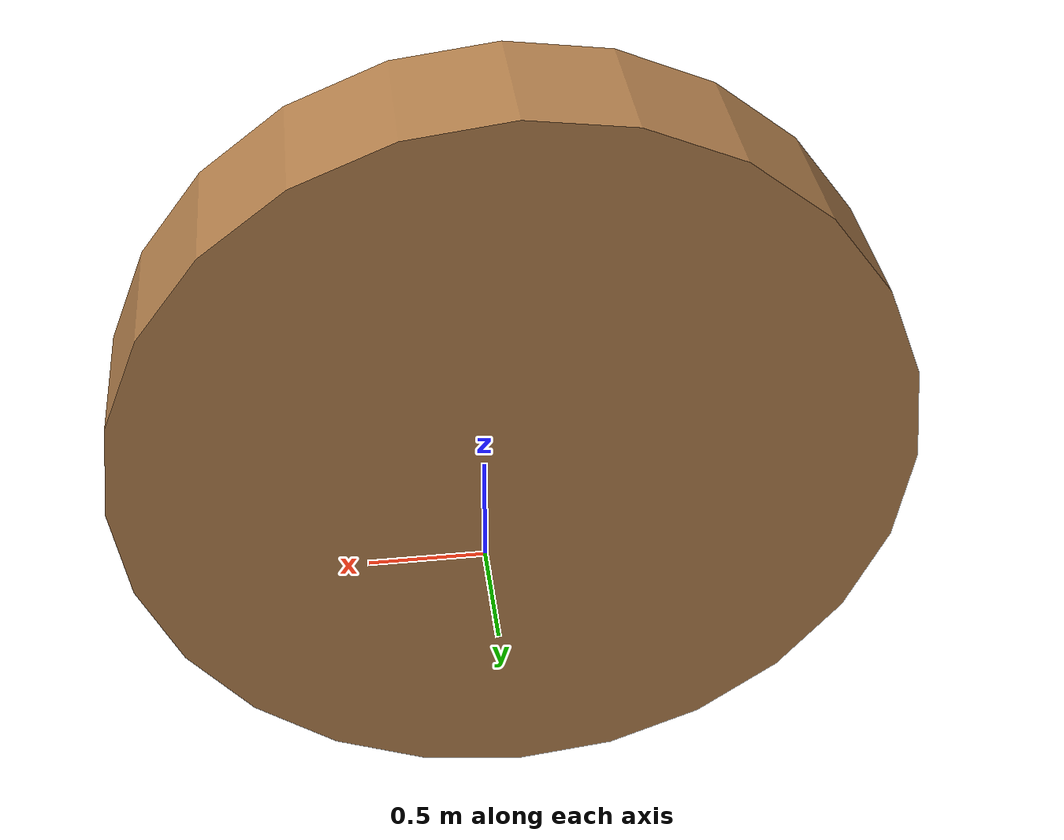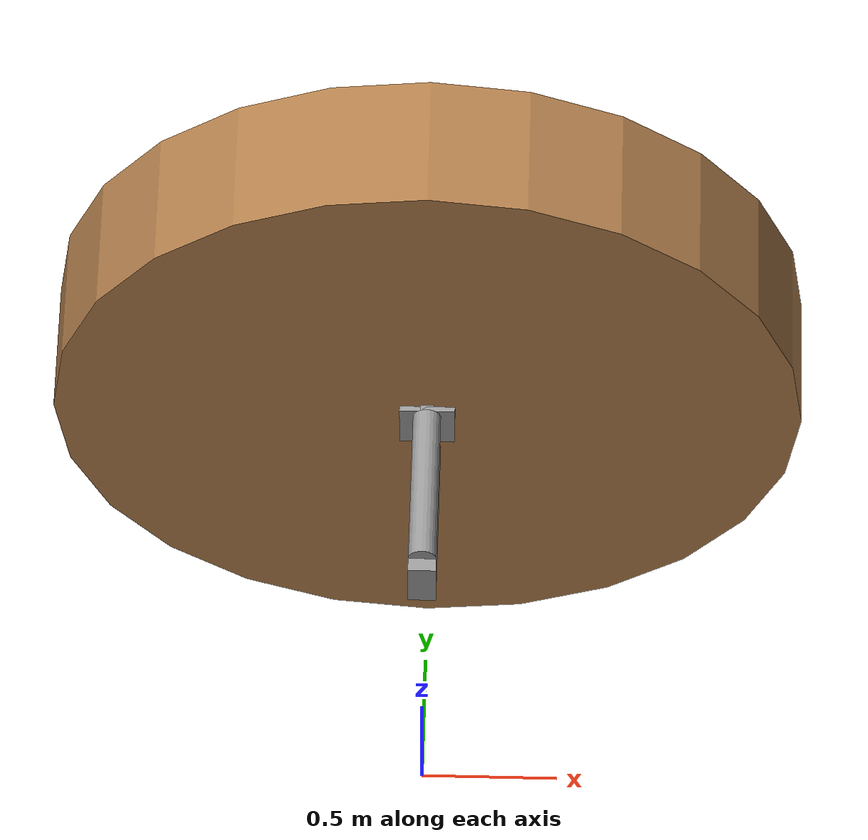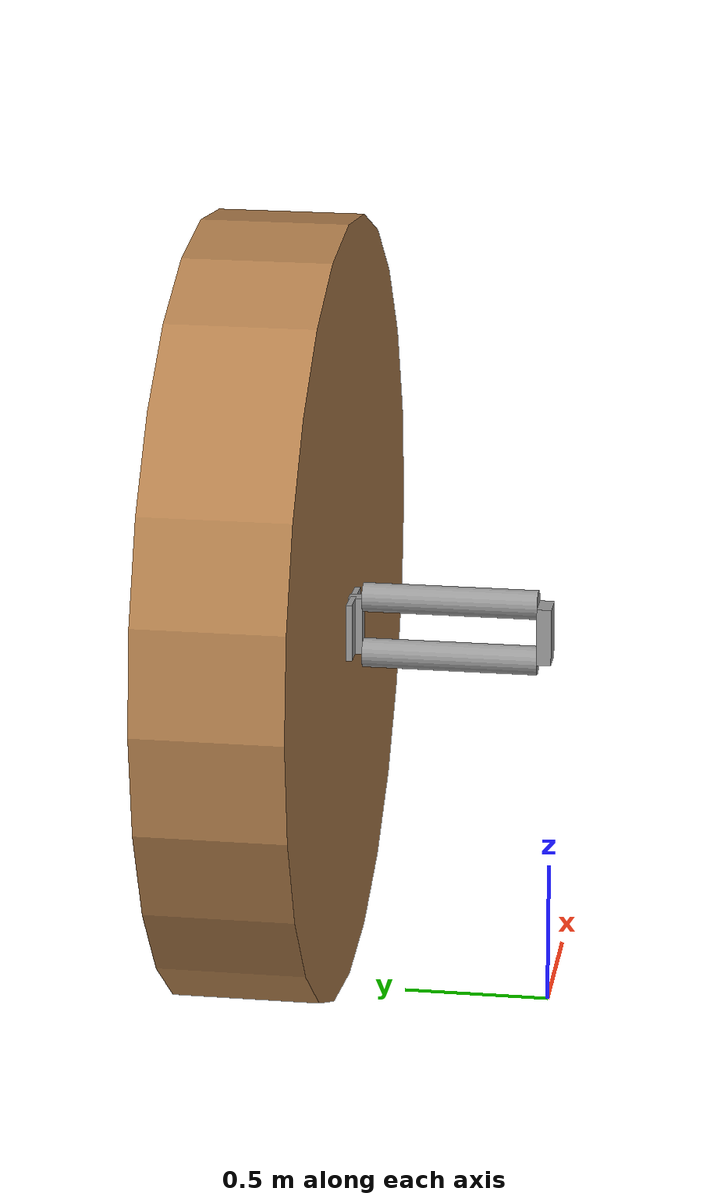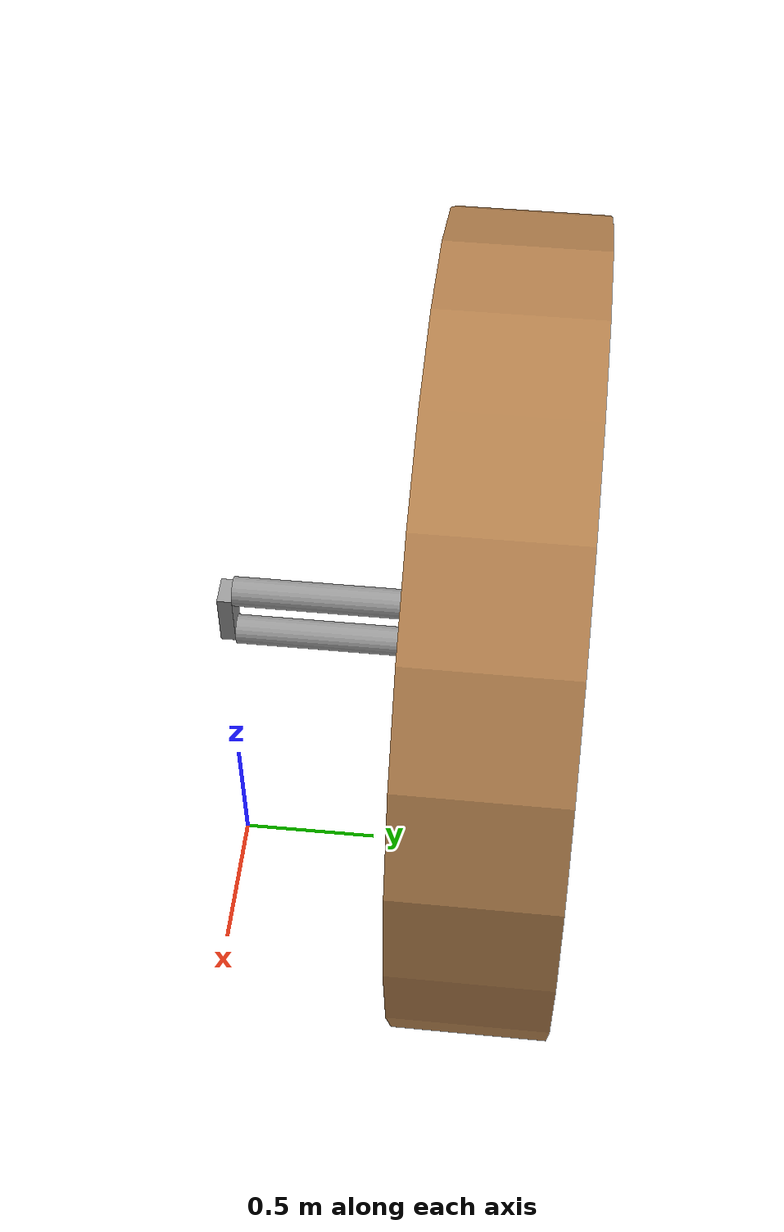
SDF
<?xml version="1.0" ?>

<sdf version="1.5">
  <model name="steered_suspension">

<!-- Inner Chassis Mount -->
    <link name="inner_mount">
      <pose>0 0.025 1.35  0 0 0</pose>
      <inertial>
        <pose>0 0.025 1.35  0 0 0</pose>
        <mass>10</mass>
        <inertia>
          <ixx>10</ixx>
          <iyy>10</iyy>
          <izz>10</izz>
          <ixy>0</ixy>
          <ixz>0</ixz>
          <iyz>0</iyz>
        </inertia>
      </inertial>
      <collision name="collision">
        <geometry>
          <box>
            <size>0.1 0.05 0.2</size>
          </box>
        </geometry>
      </collision>
      <visual name="visual">
        <geometry>
          <box>
            <size>0.1 0.05 0.2</size>
          </box>
        </geometry>
        <material>
          <script>
            <uri>file://media/materials/scripts/gazebo.material</uri>
            <name>Gazebo/Grey</name>
          </script>
        </material>
      </visual>
    </link>

<!-- upper arm -->
    <link name="upper_suspension_arm">
      <pose>0 0.35 1.45  -1.5707963267948966 0 0</pose>
      <inertial>
        <mass>20</mass>
        <inertia>
          <ixx>20</ixx>
          <iyy>20</iyy>
          <izz>20</izz>
          <ixy>0</ixy>
          <ixz>0</ixz>
          <iyz>0</iyz>
        </inertia>
      </inertial>
      <collision name="collision">
        <geometry>
          <cylinder>
            <radius>0.05</radius>
            <length>0.6</length>
          </cylinder>
        </geometry>
      </collision>
      <visual name="visual">
        <geometry>
          <cylinder>
            <radius>0.05</radius>
            <length>0.6</length>
          </cylinder>
        </geometry>
        <material>
          <script>
            <uri>file://media/materials/scripts/gazebo.material</uri>
            <name>Gazebo/Grey</name>
          </script>
        </material>
      </visual>
    </link>

    <joint name="inner_moount_to_upper_arm" type="revolute">
      <parent>inner_mount</parent>
      <child>upper_suspension_arm</child>
      <pose>0 0 -0.3 0 0 0</pose>
      <axis>
        <xyz>1 0 0</xyz>
        <limit>
          <upper>0.5</upper>
          <lower>-0.5</lower>
        </limit>
        <dynamics>
          <damping>10000</damping>
          <spring_stiffness>100000</spring_stiffness>
          <spring_reference>-0.5</spring_reference>
        </dynamics>
      </axis>
    </joint>

    <joint name="wheel_moount_to_upper_arm" type="revolute">
      <parent>wheel_mount</parent>
      <child>upper_suspension_arm</child>
      <pose>0 0 0.3 0 0 0</pose>
      <axis>
        <xyz>1 0 0</xyz>
      </axis>
    </joint>

<!-- lower arm -->
    <link name="lower_suspension_arm">
      <pose>0 0.35 1.25  -1.5707963267948966 0 0</pose>
      <inertial>
        <mass>20</mass>
        <inertia>
          <ixx>20</ixx>
          <iyy>20</iyy>
          <izz>20</izz>
          <ixy>0</ixy>
          <ixz>0</ixz>
          <iyz>0</iyz>
        </inertia>
      </inertial>
      <collision name="collision">
        <geometry>
          <cylinder>
            <radius>0.05</radius>
            <length>0.6</length>
          </cylinder>
        </geometry>
      </collision>
      <visual name="visual">
        <geometry>
          <cylinder>
            <radius>0.05</radius>
            <length>0.6</length>
          </cylinder>
        </geometry>
        <material>
          <script>
            <uri>file://media/materials/scripts/gazebo.material</uri>
            <name>Gazebo/Grey</name>
          </script>
        </material>
      </visual>
    </link>

    <joint name="inner_moount_to_lower_arm" type="revolute">
      <parent>inner_mount</parent>
      <child>lower_suspension_arm</child>
      <pose>0 0 -0.3 0 0 0</pose>
      <axis>
        <xyz>1 0 0</xyz>
        <limit>
          <upper>0.5</upper>
          <lower>-0.5</lower>
        </limit>
      </axis>
    </joint>

    <joint name="wheel_moount_to_lower_arm" type="revolute">
      <parent>wheel_mount</parent>
      <child>lower_suspension_arm</child>
      <pose>-0 0 0.3 0 0 0</pose>
      <axis>
        <xyz>1 0 0</xyz>
      </axis>
    </joint>

<!-- Wheel Mount -->
    <link name="wheel_mount">
      <pose>0 0.675 1.35  0 0 0</pose>
      <inertial>
        <mass>10</mass>
        <inertia>
          <ixx>10</ixx>
          <iyy>10</iyy>
          <izz>10</izz>
          <ixy>0</ixy>
          <ixz>0</ixz>
          <iyz>0</iyz>
        </inertia>
      </inertial>
      <collision name="collision">
        <geometry>
          <box>
            <size>0.05 0.05 0.2</size>
          </box>
        </geometry>
      </collision>
      <visual name="visual">
        <geometry>
          <box>
            <size>0.05 0.05 0.2</size>
          </box>
        </geometry>
        <material>
          <script>
            <uri>file://media/materials/scripts/gazebo.material</uri>
            <name>Gazebo/Grey</name>
          </script>
        </material>
      </visual>
    </link>

    <joint type="revolute" name="steering_joint">
      <parent>wheel_mount</parent>
      <child>wheel_bearing</child>
      <axis>
        <xyz>0 0 1</xyz>
        <limit>
          <lower>-0.45</lower>
          <upper>0.45</upper>
        </limit>
        <use_parent_model_frame>true</use_parent_model_frame>
        <dynamics>
          <damping>10</damping>
          <spring_stiffness>100000</spring_stiffness>
          <spring_reference>0</spring_reference>
        </dynamics>
      </axis>
    </joint>

    <link name="wheel_bearing">
      <pose>0 0.685 1.35  0 0 0</pose>
      <inertial>
        <mass>10</mass>
        <inertia>
          <ixx>1</ixx>
          <iyy>1</iyy>
          <izz>1</izz>
          <ixy>0</ixy>
          <ixz>0</ixz>
          <iyz>0</iyz>
        </inertia>
      </inertial>
      <collision name="collision">
        <geometry>
          <box>
            <size>0.2 0.02 0.2</size>
          </box>
        </geometry>
      </collision>
      <visual name="visual">
        <geometry>
          <box>
            <size>0.2 0.02 0.2</size>
          </box>
        </geometry>
        <material>
          <script>
            <uri>file://media/materials/scripts/gazebo.material</uri>
            <name>Gazebo/Grey</name>
          </script>
        </material>
      </visual>
    </link>

    <joint type="revolute" name="bearing_joint">
      <parent>wheel_bearing</parent>
      <child>wheel_steered</child>
      <axis>
        <xyz>0 1 0</xyz>
        <use_parent_model_frame>true</use_parent_model_frame>
      </axis>
    </joint>

<!-- Wheel -->
    <link name="wheel_steered">
      <pose>0 0.95 1.4  -1.5707963267948966 0 0</pose>
      <inertial>
        <mass>20</mass>
        <inertia>
          <ixx>1</ixx>
          <iyy>1</iyy>
          <izz>1</izz>
          <ixy>0</ixy>
          <ixz>0</ixz>
          <iyz>0</iyz>
        </inertia>
      </inertial>
      <collision name="collision">
        <geometry>
          <cylinder>
            <radius>1.35</radius>
            <length>0.5</length>
          </cylinder>
        </geometry>
      </collision>
      <visual name="visual">
        <geometry>
          <cylinder>
            <radius>1.35</radius>
            <length>0.5</length>
          </cylinder>
        </geometry>
        <material>
          <script>
            <uri>file://media/materials/scripts/gazebo.material</uri>
            <name>Gazebo/Wood</name>
          </script>
        </material>
      </visual>
    </link>

  </model>
</sdf>
